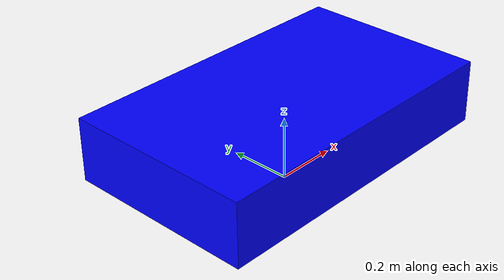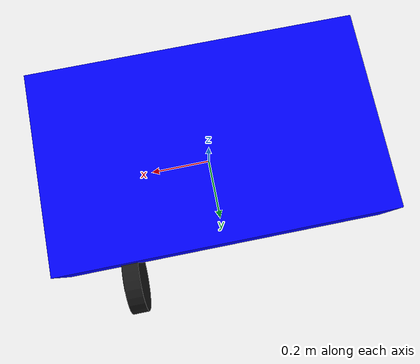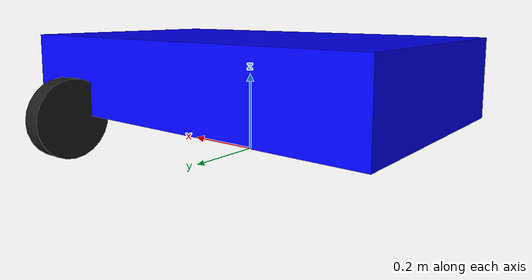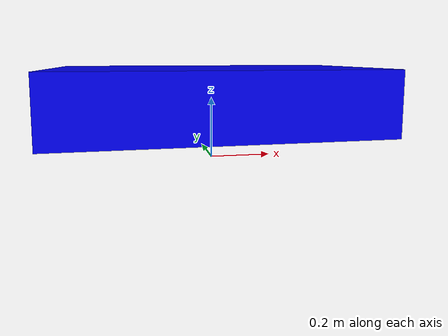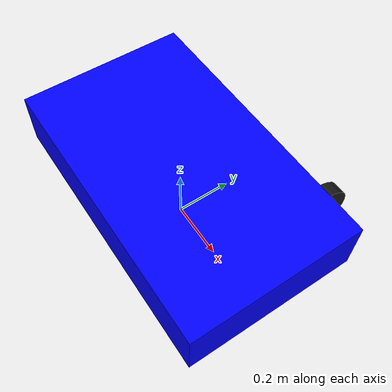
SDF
<?xml version="1.0" ?>
<sdf version="1.6">
  <model name="simple_car">
    <static>false</static> <!-- This means the model can move -->

    <!-- ========== CHASSIS (The Body) ========== -->
    <link name="chassis">
      <pose>0 0 0.2 0 0 0</pose>
      <inertial> <!-- Physics properties -->
        <mass>10.0</mass>
      </inertial>
      <collision name="collision">
        <geometry>
          <box><size>1.0 0.6 0.2</size></box> <!-- Shape for physics collisions -->
        </geometry>
      </collision>
      <visual name="visual">
        <geometry>
          <box><size>1.0 0.6 0.2</size></box> <!-- Shape you see -->
        </geometry>
        <material>
          <ambient>0.0 0.0 1.0 1</ambient> <!-- Make it blue -->
          <diffuse>0.0 0.0 1.0 1</diffuse>
        </material>
      </visual>
    </link>

    <!-- ========== WHEELS ========== -->
    <!-- We will create 4 wheels and attach them to the chassis with joints -->

    <!-- Front Left Wheel -->
    <link name="front_left_wheel">
      <pose>0.3 0.35 0.1 0 1.5707 0</pose> <!-- Position relative to car center -->
      <inertial><mass>1.0</mass></inertial>
      <collision name="collision">
        <geometry><cylinder><radius>0.1</radius><length>0.05</length></cylinder></geometry>
      </collision>
      <visual name="visual">
        <geometry><cylinder><radius>0.1</radius><length>0.05</length></cylinder></geometry>
        <material><ambient>0.1 0.1 0.1 1</ambient><diffuse>0.1 0.1 0.1 1</diffuse></material>
      </visual>
    </link>

    <!-- ... (Repeat for front_right, rear_left, rear_right with different poses) ... -->
    <!-- NOTE: For brevity, I'll omit the other 3 wheels. A full file would have them. -->

    <!-- ========== JOINTS (Connecting Wheels to Chassis) ========== -->
    <joint name="front_left_wheel_joint" type="revolute">
      <parent>chassis</parent>
      <child>front_left_wheel</child>
      <axis><xyz>0 1 0</xyz></axis> <!-- The axis the wheel spins on -->
    </joint>

    <!-- ... (Joints for the other 3 wheels) ... -->

    <!-- ========== GAZEBO PLUGINS (The ROS Connection) ========== -->
    <plugin name="differential_drive_controller" filename="libgazebo_ros_diff_drive.so">
      <!-- This plugin provides a differential drive (skid steer) interface -->
      <ros>
        <!-- Remap the default 'cmd_vel' topic to one specific for our car -->
        <namespace>/my_car</namespace>
        <remapping>cmd_vel:=cmd_vel_raw</remapping>
        <remapping>odom:=odom_raw</remapping>
      </ros>

      <!-- Wheel joint names -->
      <left_joint>front_left_wheel_joint</left_joint>
      <left_joint>rear_left_wheel_joint</left_joint>
      <right_joint>front_right_wheel_joint</right_joint>
      <right_joint>rear_right_wheel_joint</right_joint>

      <!-- Kinematics -->
      <wheel_separation>0.7</wheel_separation> <!-- Distance between left and right wheels -->
      <wheel_diameter>0.2</wheel_diameter>

      <!-- Output -->
      <publish_odom>true</publish_odom>
      <publish_tf>true</publish_tf>
      <odometry_frame>odom</odometry_frame>
      <robot_base_frame>chassis</robot_base_frame>
    </plugin>

  </model>
</sdf>
